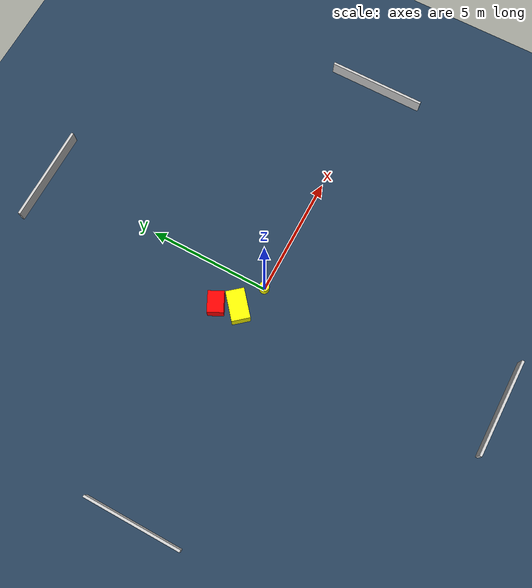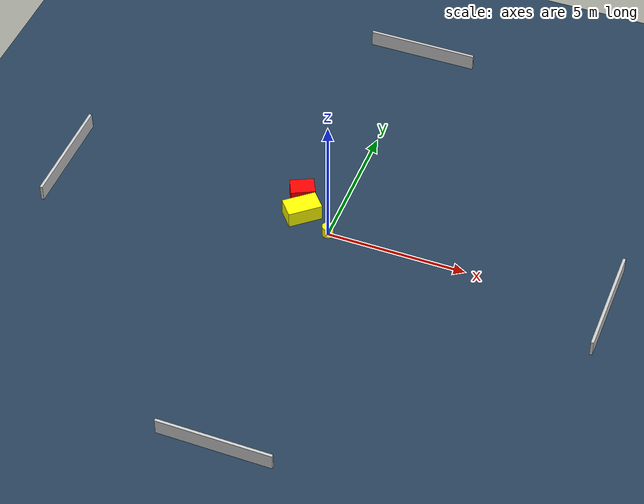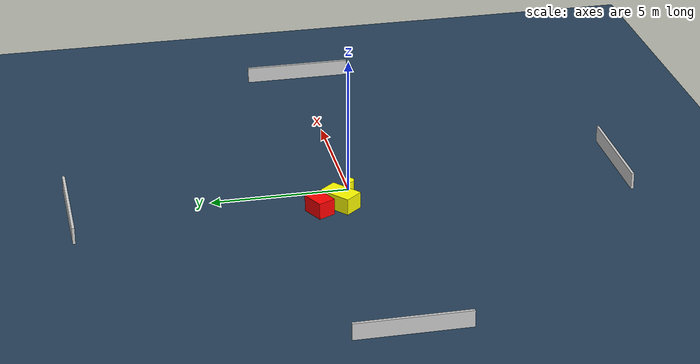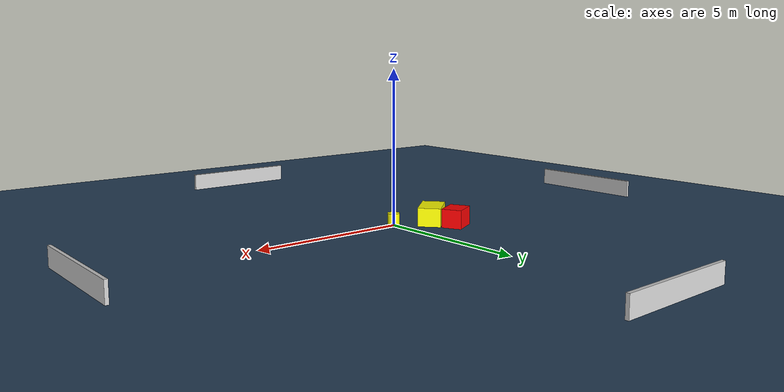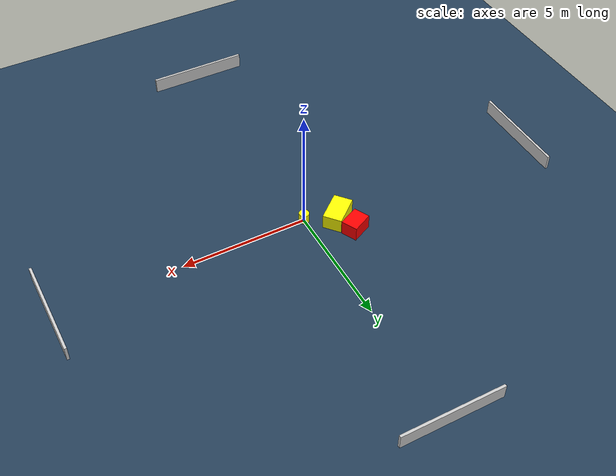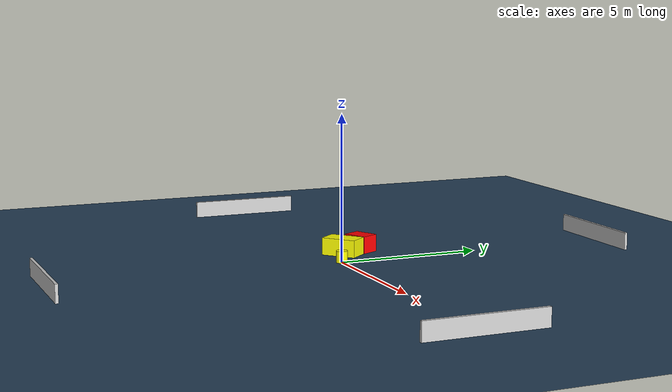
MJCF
<?xml version="1.0" ?>
<mujoco model="generated_environment">
  <option timestep="0.01" integrator="RK4" cone="elliptic"/>
  <default>
    <geom density="1"/>
  </default>
  <asset>
    <texture builtin="gradient" height="3072" name="skybox" rgb1="0.3 0.5 0.7" rgb2="0 0 0" type="skybox" width="512"/>
    <texture builtin="checker" height="300" name="groundplane" rgb1="0.2 0.3 0.4" rgb2="0.1 0.2 0.3" type="2d" width="300"/>
    <material name="groundplane" reflectance="0.2" texrepeat="5 5" texture="groundplane"/>
  </asset>
  <worldbody>
    <light dir="0 0 -1" directional="true" pos="0 0 1.5"/>
    <geom condim="3" friction="0.5 0.005 0.001" material="groundplane" name="floor" pos="0 0 0" size="0 0 0.05" type="plane"/>
    <body name="walls">
      <geom name="wall_1" condim="4" pos="-10.0 0.0 0.3" rgba="0.800000011920929 0.800000011920929 0.800000011920929 1.0" size="0.05 2.0 0.3" type="box"/>
      <geom name="wall_2" condim="4" pos="10.0 0.0 0.3" rgba="0.800000011920929 0.800000011920929 0.800000011920929 1.0" size="0.05 2.0 0.3" type="box"/>
      <geom name="wall_3" condim="4" pos="0.0 -10.0 0.3" rgba="0.800000011920929 0.800000011920929 0.800000011920929 1.0" size="2.0 0.05 0.3" type="box"/>
      <geom name="wall_4" condim="4" pos="0.0 10.0 0.3" rgba="0.800000011920929 0.800000011920929 0.800000011920929 1.0" size="2.0 0.05 0.3" type="box"/>
    </body>
    <body name="robot">
      <joint name="joint_x" type="slide" pos="0 0 0" axis="1 0 0"/>
      <joint name="joint_y" type="slide" pos="0 0 0" axis="0 1 0"/>
      <geom name="robot" type="cylinder" pos="0.0 0.0 0.2" size="0.2 0.2 0.0" mass="5.0" friction="1.0 0.005 0.0001" condim="4" rgba="1.0 1.0 0.0 1.0"/>
    </body>
    <body name="obstacle_1_movable">
      <geom name="obstacle_1_movable" condim="4" pos="-1.1626258222098025 0.5311127473193922 0.3" euler="0 0 310.2030296710938" friction="0.0 0.005 0.001" rgba="1.0 1.0 0.0 1.0" size="0.37320007483200873 0.6130493313180747 0.3" type="box" mass="0.1"/>
      <joint type="free"/>
    </body>
    <body name="obstacle_2_static">
      <geom name="obstacle_2_static" condim="4" pos="-1.4668255142945357 1.3431584324410721 0.3" euler="0 0 26.28775312841374" friction="0.0 0.005 0.001" rgba="1.0 0.0 0.0 1.0" size="0.4318311329496252 0.32623361046487975 0.3" type="box"/>
    </body>
  </worldbody>
  <actuator>
    <motor name="actuator_x" joint="joint_x" gear="1" ctrlrange="-1 1"/>
    <motor name="actuator_y" joint="joint_y" gear="1" ctrlrange="-1 1"/>
  </actuator>
</mujoco>
